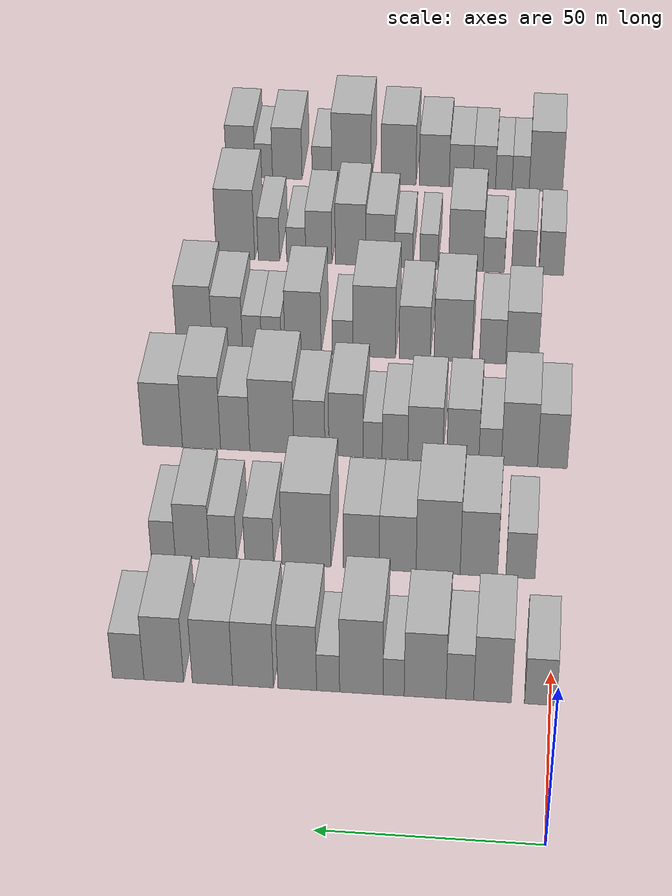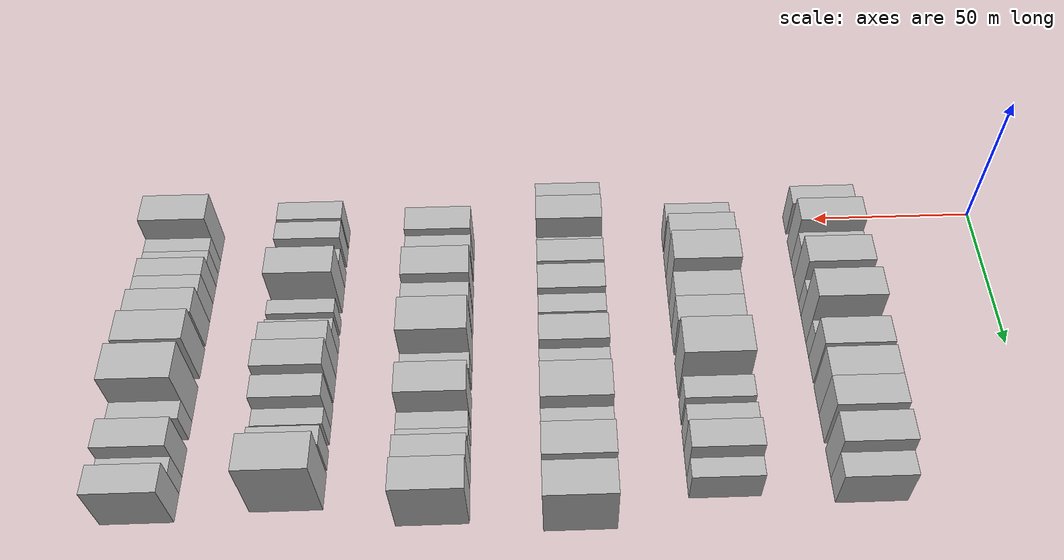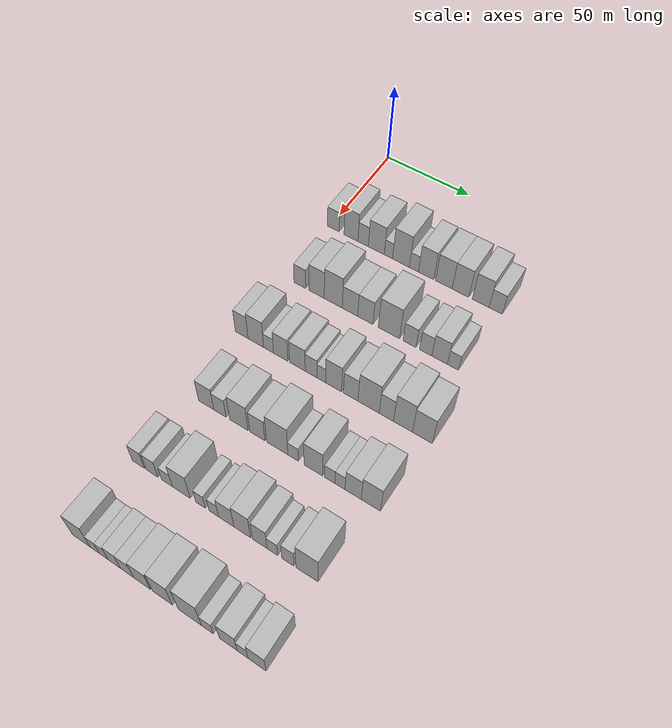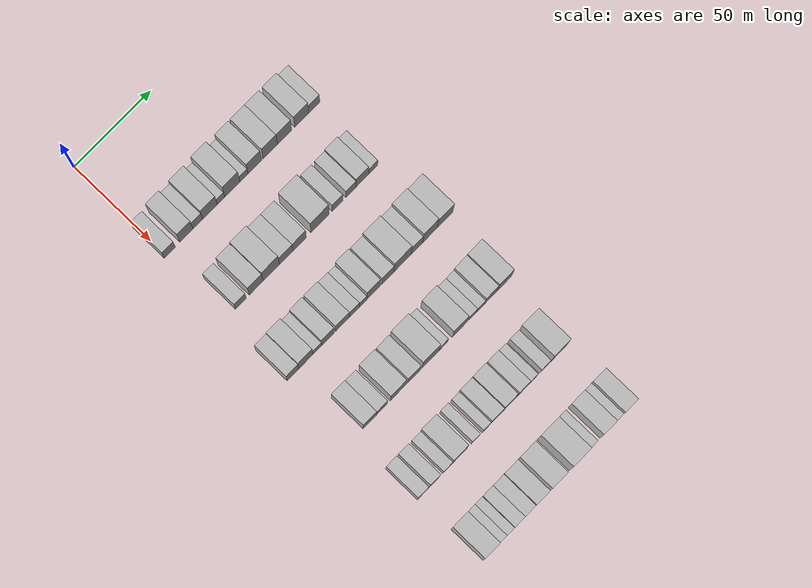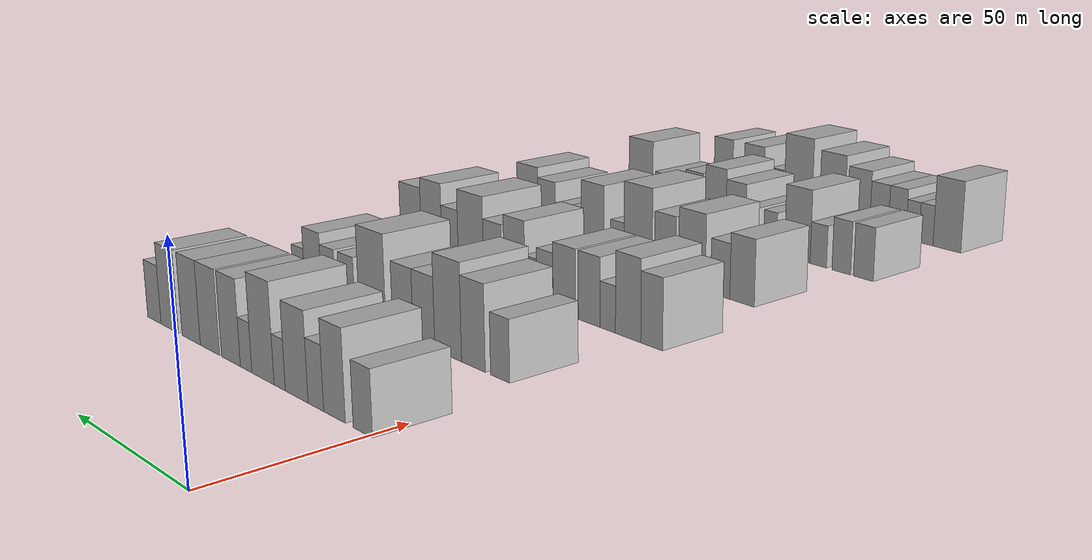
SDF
<sdf version="1.6">
 <world name="default">
  <model name="building_74">
   <static>1</static>
   <pose>50.0000 2.2648 0 0.000000 0.000000 0.000000</pose>
   <link name="link">
    <pose>0 0 7.50 0 0 0</pose>
    <collision name="collision"><geometry><box><size>20.0000 7.2375 15.0000</size></box></geometry></collision>
    <visual name="visual">
     <cast_shadows>0</cast_shadows>
     <geometry><box><size>20.0000 7.2375 15.0000</size></box></geometry>
     <material>
      <script>
       <uri>model://HANNAS_wall/materials/scripts</uri>
       <uri>model://HANNAS_wall/materials/textures</uri>
       <name>vrc/HANNAS_wall</name>
      </script>
     </material>
    </visual>
   </link>
  </model>
  <model name="building_75">
   <static>1</static>
   <pose>50.0000 13.1627 0 0.000000 0.000000 0.000000</pose>
   <link name="link">
    <pose>0 0 10.50 0 0 0</pose>
    <collision name="collision"><geometry><box><size>20.0000 8.5583 21.0000</size></box></geometry></collision>
    <visual name="visual">
     <cast_shadows>0</cast_shadows>
     <geometry><box><size>20.0000 8.5583 21.0000</size></box></geometry>
     <material>
      <script>
       <uri>model://HANNAS_wall/materials/scripts</uri>
       <uri>model://HANNAS_wall/materials/textures</uri>
       <name>vrc/HANNAS_wall</name>
      </script>
     </material>
    </visual>
   </link>
  </model>
  <model name="building_76">
   <static>1</static>
   <pose>50.0000 20.6009 0 0.000000 0.000000 0.000000</pose>
   <link name="link">
    <pose>0 0 7.50 0 0 0</pose>
    <collision name="collision"><geometry><box><size>20.0000 6.3182 15.0000</size></box></geometry></collision>
    <visual name="visual">
     <cast_shadows>0</cast_shadows>
     <geometry><box><size>20.0000 6.3182 15.0000</size></box></geometry>
     <material>
      <script>
       <uri>model://HANNAS_wall/materials/scripts</uri>
       <uri>model://HANNAS_wall/materials/textures</uri>
       <name>vrc/HANNAS_wall</name>
      </script>
     </material>
    </visual>
   </link>
  </model>
  <model name="building_77">
   <static>1</static>
   <pose>50.0000 28.5407 0 0.000000 0.000000 0.000000</pose>
   <link name="link">
    <pose>0 0 10.50 0 0 0</pose>
    <collision name="collision"><geometry><box><size>20.0000 9.5614 21.0000</size></box></geometry></collision>
    <visual name="visual">
     <cast_shadows>0</cast_shadows>
     <geometry><box><size>20.0000 9.5614 21.0000</size></box></geometry>
     <material>
      <script>
       <uri>model://HANNAS_wall/materials/scripts</uri>
       <uri>model://HANNAS_wall/materials/textures</uri>
       <name>vrc/HANNAS_wall</name>
      </script>
     </material>
    </visual>
   </link>
  </model>
  <model name="building_78">
   <static>1</static>
   <pose>50.0000 35.7611 0 0.000000 0.000000 0.000000</pose>
   <link name="link">
    <pose>0 0 6.00 0 0 0</pose>
    <collision name="collision"><geometry><box><size>20.0000 4.8795 12.0000</size></box></geometry></collision>
    <visual name="visual">
     <cast_shadows>0</cast_shadows>
     <geometry><box><size>20.0000 4.8795 12.0000</size></box></geometry>
     <material>
      <script>
       <uri>model://HANNAS_wall/materials/scripts</uri>
       <uri>model://HANNAS_wall/materials/textures</uri>
       <name>vrc/HANNAS_wall</name>
      </script>
     </material>
    </visual>
   </link>
  </model>
  <model name="building_79">
   <static>1</static>
   <pose>50.0000 43.1635 0 0.000000 0.000000 0.000000</pose>
   <link name="link">
    <pose>0 0 12.00 0 0 0</pose>
    <collision name="collision"><geometry><box><size>20.0000 9.9253 24.0000</size></box></geometry></collision>
    <visual name="visual">
     <cast_shadows>0</cast_shadows>
     <geometry><box><size>20.0000 9.9253 24.0000</size></box></geometry>
     <material>
      <script>
       <uri>model://HANNAS_wall/materials/scripts</uri>
       <uri>model://HANNAS_wall/materials/textures</uri>
       <name>vrc/HANNAS_wall</name>
      </script>
     </material>
    </visual>
   </link>
  </model>
  <model name="building_80">
   <static>1</static>
   <pose>50.0000 50.7691 0 0.000000 0.000000 0.000000</pose>
   <link name="link">
    <pose>0 0 6.00 0 0 0</pose>
    <collision name="collision"><geometry><box><size>20.0000 5.2859 12.0000</size></box></geometry></collision>
    <visual name="visual">
     <cast_shadows>0</cast_shadows>
     <geometry><box><size>20.0000 5.2859 12.0000</size></box></geometry>
     <material>
      <script>
       <uri>model://HANNAS_wall/materials/scripts</uri>
       <uri>model://HANNAS_wall/materials/textures</uri>
       <name>vrc/HANNAS_wall</name>
      </script>
     </material>
    </visual>
   </link>
  </model>
  <model name="building_81">
   <static>1</static>
   <pose>50.0000 57.8655 0 0.000000 0.000000 0.000000</pose>
   <link name="link">
    <pose>0 0 10.50 0 0 0</pose>
    <collision name="collision"><geometry><box><size>20.0000 8.9070 21.0000</size></box></geometry></collision>
    <visual name="visual">
     <cast_shadows>0</cast_shadows>
     <geometry><box><size>20.0000 8.9070 21.0000</size></box></geometry>
     <material>
      <script>
       <uri>model://HANNAS_wall/materials/scripts</uri>
       <uri>model://HANNAS_wall/materials/textures</uri>
       <name>vrc/HANNAS_wall</name>
      </script>
     </material>
    </visual>
   </link>
  </model>
  <model name="building_82">
   <static>1</static>
   <pose>50.0000 68.0477 0 0.000000 0.000000 0.000000</pose>
   <link name="link">
    <pose>0 0 10.50 0 0 0</pose>
    <collision name="collision"><geometry><box><size>20.0000 9.4573 21.0000</size></box></geometry></collision>
    <visual name="visual">
     <cast_shadows>0</cast_shadows>
     <geometry><box><size>20.0000 9.4573 21.0000</size></box></geometry>
     <material>
      <script>
       <uri>model://HANNAS_wall/materials/scripts</uri>
       <uri>model://HANNAS_wall/materials/textures</uri>
       <name>vrc/HANNAS_wall</name>
      </script>
     </material>
    </visual>
   </link>
  </model>
  <model name="building_83">
   <static>1</static>
   <pose>50.0000 77.4433 0 0.000000 0.000000 0.000000</pose>
   <link name="link">
    <pose>0 0 10.50 0 0 0</pose>
    <collision name="collision"><geometry><box><size>20.0000 9.3339 21.0000</size></box></geometry></collision>
    <visual name="visual">
     <cast_shadows>0</cast_shadows>
     <geometry><box><size>20.0000 9.3339 21.0000</size></box></geometry>
     <material>
      <script>
       <uri>model://HANNAS_wall/materials/scripts</uri>
       <uri>model://HANNAS_wall/materials/textures</uri>
       <name>vrc/HANNAS_wall</name>
      </script>
     </material>
    </visual>
   </link>
  </model>
  <model name="building_84">
   <static>1</static>
   <pose>50.0000 88.7173 0 0.000000 0.000000 0.000000</pose>
   <link name="link">
    <pose>0 0 10.50 0 0 0</pose>
    <collision name="collision"><geometry><box><size>20.0000 9.2142 21.0000</size></box></geometry></collision>
    <visual name="visual">
     <cast_shadows>0</cast_shadows>
     <geometry><box><size>20.0000 9.2142 21.0000</size></box></geometry>
     <material>
      <script>
       <uri>model://HANNAS_wall/materials/scripts</uri>
       <uri>model://HANNAS_wall/materials/textures</uri>
       <name>vrc/HANNAS_wall</name>
      </script>
     </material>
    </visual>
   </link>
  </model>
  <model name="building_85">
   <static>1</static>
   <pose>50.0000 96.9901 0 0.000000 0.000000 0.000000</pose>
   <link name="link">
    <pose>0 0 7.50 0 0 0</pose>
    <collision name="collision"><geometry><box><size>20.0000 7.3313 15.0000</size></box></geometry></collision>
    <visual name="visual">
     <cast_shadows>0</cast_shadows>
     <geometry><box><size>20.0000 7.3313 15.0000</size></box></geometry>
     <material>
      <script>
       <uri>model://HANNAS_wall/materials/scripts</uri>
       <uri>model://HANNAS_wall/materials/textures</uri>
       <name>vrc/HANNAS_wall</name>
      </script>
     </material>
    </visual>
   </link>
  </model>
  <model name="building_195">
   <static>1</static>
   <pose>90.0000 8.1143 0 0.000000 0.000000 0.000000</pose>
   <link name="link">
    <pose>0 0 7.50 0 0 0</pose>
    <collision name="collision"><geometry><box><size>20.0000 7.0171 15.0000</size></box></geometry></collision>
    <visual name="visual">
     <cast_shadows>0</cast_shadows>
     <geometry><box><size>20.0000 7.0171 15.0000</size></box></geometry>
     <material>
      <script>
       <uri>model://HANNAS_wall/materials/scripts</uri>
       <uri>model://HANNAS_wall/materials/textures</uri>
       <name>vrc/HANNAS_wall</name>
      </script>
     </material>
    </visual>
   </link>
  </model>
  <model name="building_196">
   <static>1</static>
   <pose>90.0000 18.1318 0 0.000000 0.000000 0.000000</pose>
   <link name="link">
    <pose>0 0 10.50 0 0 0</pose>
    <collision name="collision"><geometry><box><size>20.0000 9.0178 21.0000</size></box></geometry></collision>
    <visual name="visual">
     <cast_shadows>0</cast_shadows>
     <geometry><box><size>20.0000 9.0178 21.0000</size></box></geometry>
     <material>
      <script>
       <uri>model://HANNAS_wall/materials/scripts</uri>
       <uri>model://HANNAS_wall/materials/textures</uri>
       <name>vrc/HANNAS_wall</name>
      </script>
     </material>
    </visual>
   </link>
  </model>
  <model name="building_197">
   <static>1</static>
   <pose>90.0000 27.9597 0 0.000000 0.000000 0.000000</pose>
   <link name="link">
    <pose>0 0 12.00 0 0 0</pose>
    <collision name="collision"><geometry><box><size>20.0000 10.6381 24.0000</size></box></geometry></collision>
    <visual name="visual">
     <cast_shadows>0</cast_shadows>
     <geometry><box><size>20.0000 10.6381 24.0000</size></box></geometry>
     <material>
      <script>
       <uri>model://HANNAS_wall/materials/scripts</uri>
       <uri>model://HANNAS_wall/materials/textures</uri>
       <name>vrc/HANNAS_wall</name>
      </script>
     </material>
    </visual>
   </link>
  </model>
  <model name="building_198">
   <static>1</static>
   <pose>90.0000 37.7252 0 0.000000 0.000000 0.000000</pose>
   <link name="link">
    <pose>0 0 9.00 0 0 0</pose>
    <collision name="collision"><geometry><box><size>20.0000 8.8930 18.0000</size></box></geometry></collision>
    <visual name="visual">
     <cast_shadows>0</cast_shadows>
     <geometry><box><size>20.0000 8.8930 18.0000</size></box></geometry>
     <material>
      <script>
       <uri>model://HANNAS_wall/materials/scripts</uri>
       <uri>model://HANNAS_wall/materials/textures</uri>
       <name>vrc/HANNAS_wall</name>
      </script>
     </material>
    </visual>
   </link>
  </model>
  <model name="building_199">
   <static>1</static>
   <pose>90.0000 46.5488 0 0.000000 0.000000 0.000000</pose>
   <link name="link">
    <pose>0 0 9.00 0 0 0</pose>
    <collision name="collision"><geometry><box><size>20.0000 8.7542 18.0000</size></box></geometry></collision>
    <visual name="visual">
     <cast_shadows>0</cast_shadows>
     <geometry><box><size>20.0000 8.7542 18.0000</size></box></geometry>
     <material>
      <script>
       <uri>model://HANNAS_wall/materials/scripts</uri>
       <uri>model://HANNAS_wall/materials/textures</uri>
       <name>vrc/HANNAS_wall</name>
      </script>
     </material>
    </visual>
   </link>
  </model>
  <model name="building_200">
   <static>1</static>
   <pose>90.0000 59.8973 0 0.000000 0.000000 0.000000</pose>
   <link name="link">
    <pose>0 0 12.00 0 0 0</pose>
    <collision name="collision"><geometry><box><size>20.0000 11.9426 24.0000</size></box></geometry></collision>
    <visual name="visual">
     <cast_shadows>0</cast_shadows>
     <geometry><box><size>20.0000 11.9426 24.0000</size></box></geometry>
     <material>
      <script>
       <uri>model://HANNAS_wall/materials/scripts</uri>
       <uri>model://HANNAS_wall/materials/textures</uri>
       <name>vrc/HANNAS_wall</name>
      </script>
     </material>
    </visual>
   </link>
  </model>
  <model name="building_201">
   <static>1</static>
   <pose>90.0000 71.3973 0 0.000000 0.000000 0.000000</pose>
   <link name="link">
    <pose>0 0 7.50 0 0 0</pose>
    <collision name="collision"><geometry><box><size>20.0000 7.0575 15.0000</size></box></geometry></collision>
    <visual name="visual">
     <cast_shadows>0</cast_shadows>
     <geometry><box><size>20.0000 7.0575 15.0000</size></box></geometry>
     <material>
      <script>
       <uri>model://HANNAS_wall/materials/scripts</uri>
       <uri>model://HANNAS_wall/materials/textures</uri>
       <name>vrc/HANNAS_wall</name>
      </script>
     </material>
    </visual>
   </link>
  </model>
  <model name="building_202">
   <static>1</static>
   <pose>90.0000 80.2539 0 0.000000 0.000000 0.000000</pose>
   <link name="link">
    <pose>0 0 7.50 0 0 0</pose>
    <collision name="collision"><geometry><box><size>20.0000 6.6558 15.0000</size></box></geometry></collision>
    <visual name="visual">
     <cast_shadows>0</cast_shadows>
     <geometry><box><size>20.0000 6.6558 15.0000</size></box></geometry>
     <material>
      <script>
       <uri>model://HANNAS_wall/materials/scripts</uri>
       <uri>model://HANNAS_wall/materials/textures</uri>
       <name>vrc/HANNAS_wall</name>
      </script>
     </material>
    </visual>
   </link>
  </model>
  <model name="building_203">
   <static>1</static>
   <pose>90.0000 87.7767 0 0.000000 0.000000 0.000000</pose>
   <link name="link">
    <pose>0 0 9.00 0 0 0</pose>
    <collision name="collision"><geometry><box><size>20.0000 8.3898 18.0000</size></box></geometry></collision>
    <visual name="visual">
     <cast_shadows>0</cast_shadows>
     <geometry><box><size>20.0000 8.3898 18.0000</size></box></geometry>
     <material>
      <script>
       <uri>model://HANNAS_wall/materials/scripts</uri>
       <uri>model://HANNAS_wall/materials/textures</uri>
       <name>vrc/HANNAS_wall</name>
      </script>
     </material>
    </visual>
   </link>
  </model>
  <model name="building_204">
   <static>1</static>
   <pose>90.0000 94.9341 0 0.000000 0.000000 0.000000</pose>
   <link name="link">
    <pose>0 0 6.00 0 0 0</pose>
    <collision name="collision"><geometry><box><size>20.0000 5.9249 12.0000</size></box></geometry></collision>
    <visual name="visual">
     <cast_shadows>0</cast_shadows>
     <geometry><box><size>20.0000 5.9249 12.0000</size></box></geometry>
     <material>
      <script>
       <uri>model://HANNAS_wall/materials/scripts</uri>
       <uri>model://HANNAS_wall/materials/textures</uri>
       <name>vrc/HANNAS_wall</name>
      </script>
     </material>
    </visual>
   </link>
  </model>
  <model name="building_332">
   <static>1</static>
   <pose>130.0000 1.3070 0 0.000000 0.000000 0.000000</pose>
   <link name="link">
    <pose>0 0 9.00 0 0 0</pose>
    <collision name="collision"><geometry><box><size>20.0000 7.5720 18.0000</size></box></geometry></collision>
    <visual name="visual">
     <cast_shadows>0</cast_shadows>
     <geometry><box><size>20.0000 7.5720 18.0000</size></box></geometry>
     <material>
      <script>
       <uri>model://HANNAS_wall/materials/scripts</uri>
       <uri>model://HANNAS_wall/materials/textures</uri>
       <name>vrc/HANNAS_wall</name>
      </script>
     </material>
    </visual>
   </link>
  </model>
  <model name="building_333">
   <static>1</static>
   <pose>130.0000 9.6694 0 0.000000 0.000000 0.000000</pose>
   <link name="link">
    <pose>0 0 10.50 0 0 0</pose>
    <collision name="collision"><geometry><box><size>20.0000 9.1527 21.0000</size></box></geometry></collision>
    <visual name="visual">
     <cast_shadows>0</cast_shadows>
     <geometry><box><size>20.0000 9.1527 21.0000</size></box></geometry>
     <material>
      <script>
       <uri>model://HANNAS_wall/materials/scripts</uri>
       <uri>model://HANNAS_wall/materials/textures</uri>
       <name>vrc/HANNAS_wall</name>
      </script>
     </material>
    </visual>
   </link>
  </model>
  <model name="building_334">
   <static>1</static>
   <pose>130.0000 17.1137 0 0.000000 0.000000 0.000000</pose>
   <link name="link">
    <pose>0 0 6.00 0 0 0</pose>
    <collision name="collision"><geometry><box><size>20.0000 5.7358 12.0000</size></box></geometry></collision>
    <visual name="visual">
     <cast_shadows>0</cast_shadows>
     <geometry><box><size>20.0000 5.7358 12.0000</size></box></geometry>
     <material>
      <script>
       <uri>model://HANNAS_wall/materials/scripts</uri>
       <uri>model://HANNAS_wall/materials/textures</uri>
       <name>vrc/HANNAS_wall</name>
      </script>
     </material>
    </visual>
   </link>
  </model>
  <model name="building_335">
   <static>1</static>
   <pose>130.0000 24.0768 0 0.000000 0.000000 0.000000</pose>
   <link name="link">
    <pose>0 0 9.00 0 0 0</pose>
    <collision name="collision"><geometry><box><size>20.0000 8.1905 18.0000</size></box></geometry></collision>
    <visual name="visual">
     <cast_shadows>0</cast_shadows>
     <geometry><box><size>20.0000 8.1905 18.0000</size></box></geometry>
     <material>
      <script>
       <uri>model://HANNAS_wall/materials/scripts</uri>
       <uri>model://HANNAS_wall/materials/textures</uri>
       <name>vrc/HANNAS_wall</name>
      </script>
     </material>
    </visual>
   </link>
  </model>
  <model name="building_336">
   <static>1</static>
   <pose>130.0000 33.6179 0 0.000000 0.000000 0.000000</pose>
   <link name="link">
    <pose>0 0 9.00 0 0 0</pose>
    <collision name="collision"><geometry><box><size>20.0000 8.8916 18.0000</size></box></geometry></collision>
    <visual name="visual">
     <cast_shadows>0</cast_shadows>
     <geometry><box><size>20.0000 8.8916 18.0000</size></box></geometry>
     <material>
      <script>
       <uri>model://HANNAS_wall/materials/scripts</uri>
       <uri>model://HANNAS_wall/materials/textures</uri>
       <name>vrc/HANNAS_wall</name>
      </script>
     </material>
    </visual>
   </link>
  </model>
  <model name="building_337">
   <static>1</static>
   <pose>130.0000 41.3486 0 0.000000 0.000000 0.000000</pose>
   <link name="link">
    <pose>0 0 7.50 0 0 0</pose>
    <collision name="collision"><geometry><box><size>20.0000 6.5700 15.0000</size></box></geometry></collision>
    <visual name="visual">
     <cast_shadows>0</cast_shadows>
     <geometry><box><size>20.0000 6.5700 15.0000</size></box></geometry>
     <material>
      <script>
       <uri>model://HANNAS_wall/materials/scripts</uri>
       <uri>model://HANNAS_wall/materials/textures</uri>
       <name>vrc/HANNAS_wall</name>
      </script>
     </material>
    </visual>
   </link>
  </model>
  <model name="building_338">
   <static>1</static>
   <pose>130.0000 47.0727 0 0.000000 0.000000 0.000000</pose>
   <link name="link">
    <pose>0 0 6.00 0 0 0</pose>
    <collision name="collision"><geometry><box><size>20.0000 4.8782 12.0000</size></box></geometry></collision>
    <visual name="visual">
     <cast_shadows>0</cast_shadows>
     <geometry><box><size>20.0000 4.8782 12.0000</size></box></geometry>
     <material>
      <script>
       <uri>model://HANNAS_wall/materials/scripts</uri>
       <uri>model://HANNAS_wall/materials/textures</uri>
       <name>vrc/HANNAS_wall</name>
      </script>
     </material>
    </visual>
   </link>
  </model>
  <model name="building_339">
   <static>1</static>
   <pose>130.0000 53.8909 0 0.000000 0.000000 0.000000</pose>
   <link name="link">
    <pose>0 0 10.50 0 0 0</pose>
    <collision name="collision"><geometry><box><size>20.0000 8.7584 21.0000</size></box></geometry></collision>
    <visual name="visual">
     <cast_shadows>0</cast_shadows>
     <geometry><box><size>20.0000 8.7584 21.0000</size></box></geometry>
     <material>
      <script>
       <uri>model://HANNAS_wall/materials/scripts</uri>
       <uri>model://HANNAS_wall/materials/textures</uri>
       <name>vrc/HANNAS_wall</name>
      </script>
     </material>
    </visual>
   </link>
  </model>
  <model name="building_340">
   <static>1</static>
   <pose>130.0000 63.2449 0 0.000000 0.000000 0.000000</pose>
   <link name="link">
    <pose>0 0 9.00 0 0 0</pose>
    <collision name="collision"><geometry><box><size>20.0000 7.9496 18.0000</size></box></geometry></collision>
    <visual name="visual">
     <cast_shadows>0</cast_shadows>
     <geometry><box><size>20.0000 7.9496 18.0000</size></box></geometry>
     <material>
      <script>
       <uri>model://HANNAS_wall/materials/scripts</uri>
       <uri>model://HANNAS_wall/materials/textures</uri>
       <name>vrc/HANNAS_wall</name>
      </script>
     </material>
    </visual>
   </link>
  </model>
  <model name="building_341">
   <static>1</static>
   <pose>130.0000 72.9099 0 0.000000 0.000000 0.000000</pose>
   <link name="link">
    <pose>0 0 12.00 0 0 0</pose>
    <collision name="collision"><geometry><box><size>20.0000 11.3805 24.0000</size></box></geometry></collision>
    <visual name="visual">
     <cast_shadows>0</cast_shadows>
     <geometry><box><size>20.0000 11.3805 24.0000</size></box></geometry>
     <material>
      <script>
       <uri>model://HANNAS_wall/materials/scripts</uri>
       <uri>model://HANNAS_wall/materials/textures</uri>
       <name>vrc/HANNAS_wall</name>
      </script>
     </material>
    </visual>
   </link>
  </model>
  <model name="building_342">
   <static>1</static>
   <pose>130.0000 82.3784 0 0.000000 0.000000 0.000000</pose>
   <link name="link">
    <pose>0 0 9.00 0 0 0</pose>
    <collision name="collision"><geometry><box><size>20.0000 7.5563 18.0000</size></box></geometry></collision>
    <visual name="visual">
     <cast_shadows>0</cast_shadows>
     <geometry><box><size>20.0000 7.5563 18.0000</size></box></geometry>
     <material>
      <script>
       <uri>model://HANNAS_wall/materials/scripts</uri>
       <uri>model://HANNAS_wall/materials/textures</uri>
       <name>vrc/HANNAS_wall</name>
      </script>
     </material>
    </visual>
   </link>
  </model>
  <model name="building_343">
   <static>1</static>
   <pose>130.0000 91.0772 0 0.000000 0.000000 0.000000</pose>
   <link name="link">
    <pose>0 0 12.00 0 0 0</pose>
    <collision name="collision"><geometry><box><size>20.0000 9.8415 24.0000</size></box></geometry></collision>
    <visual name="visual">
     <cast_shadows>0</cast_shadows>
     <geometry><box><size>20.0000 9.8415 24.0000</size></box></geometry>
     <material>
      <script>
       <uri>model://HANNAS_wall/materials/scripts</uri>
       <uri>model://HANNAS_wall/materials/textures</uri>
       <name>vrc/HANNAS_wall</name>
      </script>
     </material>
    </visual>
   </link>
  </model>
  <model name="building_344">
   <static>1</static>
   <pose>130.0000 101.1284 0 0.000000 0.000000 0.000000</pose>
   <link name="link">
    <pose>0 0 10.50 0 0 0</pose>
    <collision name="collision"><geometry><box><size>20.0000 10.2608 21.0000</size></box></geometry></collision>
    <visual name="visual">
     <cast_shadows>0</cast_shadows>
     <geometry><box><size>20.0000 10.2608 21.0000</size></box></geometry>
     <material>
      <script>
       <uri>model://HANNAS_wall/materials/scripts</uri>
       <uri>model://HANNAS_wall/materials/textures</uri>
       <name>vrc/HANNAS_wall</name>
      </script>
     </material>
    </visual>
   </link>
  </model>
  <model name="building_474">
   <static>1</static>
   <pose>170.0000 10.2628 0 0.000000 0.000000 0.000000</pose>
   <link name="link">
    <pose>0 0 9.00 0 0 0</pose>
    <collision name="collision"><geometry><box><size>20.0000 8.7100 18.0000</size></box></geometry></collision>
    <visual name="visual">
     <cast_shadows>0</cast_shadows>
     <geometry><box><size>20.0000 8.7100 18.0000</size></box></geometry>
     <material>
      <script>
       <uri>model://HANNAS_wall/materials/scripts</uri>
       <uri>model://HANNAS_wall/materials/textures</uri>
       <name>vrc/HANNAS_wall</name>
      </script>
     </material>
    </visual>
   </link>
  </model>
  <model name="building_475">
   <static>1</static>
   <pose>170.0000 18.1421 0 0.000000 0.000000 0.000000</pose>
   <link name="link">
    <pose>0 0 7.50 0 0 0</pose>
    <collision name="collision"><geometry><box><size>20.0000 7.0486 15.0000</size></box></geometry></collision>
    <visual name="visual">
     <cast_shadows>0</cast_shadows>
     <geometry><box><size>20.0000 7.0486 15.0000</size></box></geometry>
     <material>
      <script>
       <uri>model://HANNAS_wall/materials/scripts</uri>
       <uri>model://HANNAS_wall/materials/textures</uri>
       <name>vrc/HANNAS_wall</name>
      </script>
     </material>
    </visual>
   </link>
  </model>
  <model name="building_476">
   <static>1</static>
   <pose>170.0000 28.7541 0 0.000000 0.000000 0.000000</pose>
   <link name="link">
    <pose>0 0 10.50 0 0 0</pose>
    <collision name="collision"><geometry><box><size>20.0000 10.1754 21.0000</size></box></geometry></collision>
    <visual name="visual">
     <cast_shadows>0</cast_shadows>
     <geometry><box><size>20.0000 10.1754 21.0000</size></box></geometry>
     <material>
      <script>
       <uri>model://HANNAS_wall/materials/scripts</uri>
       <uri>model://HANNAS_wall/materials/textures</uri>
       <name>vrc/HANNAS_wall</name>
      </script>
     </material>
    </visual>
   </link>
  </model>
  <model name="building_477">
   <static>1</static>
   <pose>170.0000 39.0204 0 0.000000 0.000000 0.000000</pose>
   <link name="link">
    <pose>0 0 9.00 0 0 0</pose>
    <collision name="collision"><geometry><box><size>20.0000 8.3572 18.0000</size></box></geometry></collision>
    <visual name="visual">
     <cast_shadows>0</cast_shadows>
     <geometry><box><size>20.0000 8.3572 18.0000</size></box></geometry>
     <material>
      <script>
       <uri>model://HANNAS_wall/materials/scripts</uri>
       <uri>model://HANNAS_wall/materials/textures</uri>
       <name>vrc/HANNAS_wall</name>
      </script>
     </material>
    </visual>
   </link>
  </model>
  <model name="building_478">
   <static>1</static>
   <pose>170.0000 49.9130 0 0.000000 0.000000 0.000000</pose>
   <link name="link">
    <pose>0 0 12.00 0 0 0</pose>
    <collision name="collision"><geometry><box><size>20.0000 11.4280 24.0000</size></box></geometry></collision>
    <visual name="visual">
     <cast_shadows>0</cast_shadows>
     <geometry><box><size>20.0000 11.4280 24.0000</size></box></geometry>
     <material>
      <script>
       <uri>model://HANNAS_wall/materials/scripts</uri>
       <uri>model://HANNAS_wall/materials/textures</uri>
       <name>vrc/HANNAS_wall</name>
      </script>
     </material>
    </visual>
   </link>
  </model>
  <model name="building_479">
   <static>1</static>
   <pose>170.0000 58.4281 0 0.000000 0.000000 0.000000</pose>
   <link name="link">
    <pose>0 0 6.00 0 0 0</pose>
    <collision name="collision"><geometry><box><size>20.0000 5.6022 12.0000</size></box></geometry></collision>
    <visual name="visual">
     <cast_shadows>0</cast_shadows>
     <geometry><box><size>20.0000 5.6022 12.0000</size></box></geometry>
     <material>
      <script>
       <uri>model://HANNAS_wall/materials/scripts</uri>
       <uri>model://HANNAS_wall/materials/textures</uri>
       <name>vrc/HANNAS_wall</name>
      </script>
     </material>
    </visual>
   </link>
  </model>
  <model name="building_480">
   <static>1</static>
   <pose>170.0000 69.0988 0 0.000000 0.000000 0.000000</pose>
   <link name="link">
    <pose>0 0 10.50 0 0 0</pose>
    <collision name="collision"><geometry><box><size>20.0000 9.7392 21.0000</size></box></geometry></collision>
    <visual name="visual">
     <cast_shadows>0</cast_shadows>
     <geometry><box><size>20.0000 9.7392 21.0000</size></box></geometry>
     <material>
      <script>
       <uri>model://HANNAS_wall/materials/scripts</uri>
       <uri>model://HANNAS_wall/materials/textures</uri>
       <name>vrc/HANNAS_wall</name>
      </script>
     </material>
    </visual>
   </link>
  </model>
  <model name="building_481">
   <static>1</static>
   <pose>170.0000 77.6541 0 0.000000 0.000000 0.000000</pose>
   <link name="link">
    <pose>0 0 6.00 0 0 0</pose>
    <collision name="collision"><geometry><box><size>20.0000 5.3714 12.0000</size></box></geometry></collision>
    <visual name="visual">
     <cast_shadows>0</cast_shadows>
     <geometry><box><size>20.0000 5.3714 12.0000</size></box></geometry>
     <material>
      <script>
       <uri>model://HANNAS_wall/materials/scripts</uri>
       <uri>model://HANNAS_wall/materials/textures</uri>
       <name>vrc/HANNAS_wall</name>
      </script>
     </material>
    </visual>
   </link>
  </model>
  <model name="building_482">
   <static>1</static>
   <pose>170.0000 82.9139 0 0.000000 0.000000 0.000000</pose>
   <link name="link">
    <pose>0 0 6.00 0 0 0</pose>
    <collision name="collision"><geometry><box><size>20.0000 5.1480 12.0000</size></box></geometry></collision>
    <visual name="visual">
     <cast_shadows>0</cast_shadows>
     <geometry><box><size>20.0000 5.1480 12.0000</size></box></geometry>
     <material>
      <script>
       <uri>model://HANNAS_wall/materials/scripts</uri>
       <uri>model://HANNAS_wall/materials/textures</uri>
       <name>vrc/HANNAS_wall</name>
      </script>
     </material>
    </visual>
   </link>
  </model>
  <model name="building_483">
   <static>1</static>
   <pose>170.0000 89.6095 0 0.000000 0.000000 0.000000</pose>
   <link name="link">
    <pose>0 0 9.00 0 0 0</pose>
    <collision name="collision"><geometry><box><size>20.0000 8.2433 18.0000</size></box></geometry></collision>
    <visual name="visual">
     <cast_shadows>0</cast_shadows>
     <geometry><box><size>20.0000 8.2433 18.0000</size></box></geometry>
     <material>
      <script>
       <uri>model://HANNAS_wall/materials/scripts</uri>
       <uri>model://HANNAS_wall/materials/textures</uri>
       <name>vrc/HANNAS_wall</name>
      </script>
     </material>
    </visual>
   </link>
  </model>
  <model name="building_484">
   <static>1</static>
   <pose>170.0000 98.5637 0 0.000000 0.000000 0.000000</pose>
   <link name="link">
    <pose>0 0 10.50 0 0 0</pose>
    <collision name="collision"><geometry><box><size>20.0000 9.6650 21.0000</size></box></geometry></collision>
    <visual name="visual">
     <cast_shadows>0</cast_shadows>
     <geometry><box><size>20.0000 9.6650 21.0000</size></box></geometry>
     <material>
      <script>
       <uri>model://HANNAS_wall/materials/scripts</uri>
       <uri>model://HANNAS_wall/materials/textures</uri>
       <name>vrc/HANNAS_wall</name>
      </script>
     </material>
    </visual>
   </link>
  </model>
  <model name="building_617">
   <static>1</static>
   <pose>210.0000 3.3937 0 0.000000 0.000000 0.000000</pose>
   <link name="link">
    <pose>0 0 7.50 0 0 0</pose>
    <collision name="collision"><geometry><box><size>20.0000 6.8870 15.0000</size></box></geometry></collision>
    <visual name="visual">
     <cast_shadows>0</cast_shadows>
     <geometry><box><size>20.0000 6.8870 15.0000</size></box></geometry>
     <material>
      <script>
       <uri>model://HANNAS_wall/materials/scripts</uri>
       <uri>model://HANNAS_wall/materials/textures</uri>
       <name>vrc/HANNAS_wall</name>
      </script>
     </material>
    </visual>
   </link>
  </model>
  <model name="building_618">
   <static>1</static>
   <pose>210.0000 11.1658 0 0.000000 0.000000 0.000000</pose>
   <link name="link">
    <pose>0 0 7.50 0 0 0</pose>
    <collision name="collision"><geometry><box><size>20.0000 6.6573 15.0000</size></box></geometry></collision>
    <visual name="visual">
     <cast_shadows>0</cast_shadows>
     <geometry><box><size>20.0000 6.6573 15.0000</size></box></geometry>
     <material>
      <script>
       <uri>model://HANNAS_wall/materials/scripts</uri>
       <uri>model://HANNAS_wall/materials/textures</uri>
       <name>vrc/HANNAS_wall</name>
      </script>
     </material>
    </visual>
   </link>
  </model>
  <model name="building_619">
   <static>1</static>
   <pose>210.0000 19.4872 0 0.000000 0.000000 0.000000</pose>
   <link name="link">
    <pose>0 0 6.00 0 0 0</pose>
    <collision name="collision"><geometry><box><size>20.0000 5.9856 12.0000</size></box></geometry></collision>
    <visual name="visual">
     <cast_shadows>0</cast_shadows>
     <geometry><box><size>20.0000 5.9856 12.0000</size></box></geometry>
     <material>
      <script>
       <uri>model://HANNAS_wall/materials/scripts</uri>
       <uri>model://HANNAS_wall/materials/textures</uri>
       <name>vrc/HANNAS_wall</name>
      </script>
     </material>
    </visual>
   </link>
  </model>
  <model name="building_620">
   <static>1</static>
   <pose>210.0000 27.3227 0 0.000000 0.000000 0.000000</pose>
   <link name="link">
    <pose>0 0 10.50 0 0 0</pose>
    <collision name="collision"><geometry><box><size>20.0000 9.6852 21.0000</size></box></geometry></collision>
    <visual name="visual">
     <cast_shadows>0</cast_shadows>
     <geometry><box><size>20.0000 9.6852 21.0000</size></box></geometry>
     <material>
      <script>
       <uri>model://HANNAS_wall/materials/scripts</uri>
       <uri>model://HANNAS_wall/materials/textures</uri>
       <name>vrc/HANNAS_wall</name>
      </script>
     </material>
    </visual>
   </link>
  </model>
  <model name="building_621">
   <static>1</static>
   <pose>210.0000 37.7411 0 0.000000 0.000000 0.000000</pose>
   <link name="link">
    <pose>0 0 6.00 0 0 0</pose>
    <collision name="collision"><geometry><box><size>20.0000 5.1517 12.0000</size></box></geometry></collision>
    <visual name="visual">
     <cast_shadows>0</cast_shadows>
     <geometry><box><size>20.0000 5.1517 12.0000</size></box></geometry>
     <material>
      <script>
       <uri>model://HANNAS_wall/materials/scripts</uri>
       <uri>model://HANNAS_wall/materials/textures</uri>
       <name>vrc/HANNAS_wall</name>
      </script>
     </material>
    </visual>
   </link>
  </model>
  <model name="building_622">
   <static>1</static>
   <pose>210.0000 44.8460 0 0.000000 0.000000 0.000000</pose>
   <link name="link">
    <pose>0 0 6.00 0 0 0</pose>
    <collision name="collision"><geometry><box><size>20.0000 5.0579 12.0000</size></box></geometry></collision>
    <visual name="visual">
     <cast_shadows>0</cast_shadows>
     <geometry><box><size>20.0000 5.0579 12.0000</size></box></geometry>
     <material>
      <script>
       <uri>model://HANNAS_wall/materials/scripts</uri>
       <uri>model://HANNAS_wall/materials/textures</uri>
       <name>vrc/HANNAS_wall</name>
      </script>
     </material>
    </visual>
   </link>
  </model>
  <model name="building_623">
   <static>1</static>
   <pose>210.0000 51.4165 0 0.000000 0.000000 0.000000</pose>
   <link name="link">
    <pose>0 0 9.00 0 0 0</pose>
    <collision name="collision"><geometry><box><size>20.0000 8.0832 18.0000</size></box></geometry></collision>
    <visual name="visual">
     <cast_shadows>0</cast_shadows>
     <geometry><box><size>20.0000 8.0832 18.0000</size></box></geometry>
     <material>
      <script>
       <uri>model://HANNAS_wall/materials/scripts</uri>
       <uri>model://HANNAS_wall/materials/textures</uri>
       <name>vrc/HANNAS_wall</name>
      </script>
     </material>
    </visual>
   </link>
  </model>
  <model name="building_624">
   <static>1</static>
   <pose>210.0000 59.7907 0 0.000000 0.000000 0.000000</pose>
   <link name="link">
    <pose>0 0 10.50 0 0 0</pose>
    <collision name="collision"><geometry><box><size>20.0000 8.6652 21.0000</size></box></geometry></collision>
    <visual name="visual">
     <cast_shadows>0</cast_shadows>
     <geometry><box><size>20.0000 8.6652 21.0000</size></box></geometry>
     <material>
      <script>
       <uri>model://HANNAS_wall/materials/scripts</uri>
       <uri>model://HANNAS_wall/materials/textures</uri>
       <name>vrc/HANNAS_wall</name>
      </script>
     </material>
    </visual>
   </link>
  </model>
  <model name="building_625">
   <static>1</static>
   <pose>210.0000 68.8157 0 0.000000 0.000000 0.000000</pose>
   <link name="link">
    <pose>0 0 9.00 0 0 0</pose>
    <collision name="collision"><geometry><box><size>20.0000 7.3848 18.0000</size></box></geometry></collision>
    <visual name="visual">
     <cast_shadows>0</cast_shadows>
     <geometry><box><size>20.0000 7.3848 18.0000</size></box></geometry>
     <material>
      <script>
       <uri>model://HANNAS_wall/materials/scripts</uri>
       <uri>model://HANNAS_wall/materials/textures</uri>
       <name>vrc/HANNAS_wall</name>
      </script>
     </material>
    </visual>
   </link>
  </model>
  <model name="building_626">
   <static>1</static>
   <pose>210.0000 75.2285 0 0.000000 0.000000 0.000000</pose>
   <link name="link">
    <pose>0 0 6.00 0 0 0</pose>
    <collision name="collision"><geometry><box><size>20.0000 5.4409 12.0000</size></box></geometry></collision>
    <visual name="visual">
     <cast_shadows>0</cast_shadows>
     <geometry><box><size>20.0000 5.4409 12.0000</size></box></geometry>
     <material>
      <script>
       <uri>model://HANNAS_wall/materials/scripts</uri>
       <uri>model://HANNAS_wall/materials/textures</uri>
       <name>vrc/HANNAS_wall</name>
      </script>
     </material>
    </visual>
   </link>
  </model>
  <model name="building_627">
   <static>1</static>
   <pose>210.0000 82.9810 0 0.000000 0.000000 0.000000</pose>
   <link name="link">
    <pose>0 0 7.50 0 0 0</pose>
    <collision name="collision"><geometry><box><size>20.0000 6.0640 15.0000</size></box></geometry></collision>
    <visual name="visual">
     <cast_shadows>0</cast_shadows>
     <geometry><box><size>20.0000 6.0640 15.0000</size></box></geometry>
     <material>
      <script>
       <uri>model://HANNAS_wall/materials/scripts</uri>
       <uri>model://HANNAS_wall/materials/textures</uri>
       <name>vrc/HANNAS_wall</name>
      </script>
     </material>
    </visual>
   </link>
  </model>
  <model name="building_628">
   <static>1</static>
   <pose>210.0000 92.4740 0 0.000000 0.000000 0.000000</pose>
   <link name="link">
    <pose>0 0 12.00 0 0 0</pose>
    <collision name="collision"><geometry><box><size>20.0000 10.9220 24.0000</size></box></geometry></collision>
    <visual name="visual">
     <cast_shadows>0</cast_shadows>
     <geometry><box><size>20.0000 10.9220 24.0000</size></box></geometry>
     <material>
      <script>
       <uri>model://HANNAS_wall/materials/scripts</uri>
       <uri>model://HANNAS_wall/materials/textures</uri>
       <name>vrc/HANNAS_wall</name>
      </script>
     </material>
    </visual>
   </link>
  </model>
  <model name="building_759">
   <static>1</static>
   <pose>250.0000 5.8374 0 0.000000 0.000000 0.000000</pose>
   <link name="link">
    <pose>0 0 10.50 0 0 0</pose>
    <collision name="collision"><geometry><box><size>20.0000 9.7814 21.0000</size></box></geometry></collision>
    <visual name="visual">
     <cast_shadows>0</cast_shadows>
     <geometry><box><size>20.0000 9.7814 21.0000</size></box></geometry>
     <material>
      <script>
       <uri>model://HANNAS_wall/materials/scripts</uri>
       <uri>model://HANNAS_wall/materials/textures</uri>
       <name>vrc/HANNAS_wall</name>
      </script>
     </material>
    </visual>
   </link>
  </model>
  <model name="building_760">
   <static>1</static>
   <pose>250.0000 13.2516 0 0.000000 0.000000 0.000000</pose>
   <link name="link">
    <pose>0 0 6.00 0 0 0</pose>
    <collision name="collision"><geometry><box><size>20.0000 5.0470 12.0000</size></box></geometry></collision>
    <visual name="visual">
     <cast_shadows>0</cast_shadows>
     <geometry><box><size>20.0000 5.0470 12.0000</size></box></geometry>
     <material>
      <script>
       <uri>model://HANNAS_wall/materials/scripts</uri>
       <uri>model://HANNAS_wall/materials/textures</uri>
       <name>vrc/HANNAS_wall</name>
      </script>
     </material>
    </visual>
   </link>
  </model>
  <model name="building_761">
   <static>1</static>
   <pose>250.0000 18.1806 0 0.000000 0.000000 0.000000</pose>
   <link name="link">
    <pose>0 0 6.00 0 0 0</pose>
    <collision name="collision"><geometry><box><size>20.0000 4.8111 12.0000</size></box></geometry></collision>
    <visual name="visual">
     <cast_shadows>0</cast_shadows>
     <geometry><box><size>20.0000 4.8111 12.0000</size></box></geometry>
     <material>
      <script>
       <uri>model://HANNAS_wall/materials/scripts</uri>
       <uri>model://HANNAS_wall/materials/textures</uri>
       <name>vrc/HANNAS_wall</name>
      </script>
     </material>
    </visual>
   </link>
  </model>
  <model name="building_762">
   <static>1</static>
   <pose>250.0000 23.8915 0 0.000000 0.000000 0.000000</pose>
   <link name="link">
    <pose>0 0 7.50 0 0 0</pose>
    <collision name="collision"><geometry><box><size>20.0000 6.6107 15.0000</size></box></geometry></collision>
    <visual name="visual">
     <cast_shadows>0</cast_shadows>
     <geometry><box><size>20.0000 6.6107 15.0000</size></box></geometry>
     <material>
      <script>
       <uri>model://HANNAS_wall/materials/scripts</uri>
       <uri>model://HANNAS_wall/materials/textures</uri>
       <name>vrc/HANNAS_wall</name>
      </script>
     </material>
    </visual>
   </link>
  </model>
  <model name="building_763">
   <static>1</static>
   <pose>250.0000 30.7150 0 0.000000 0.000000 0.000000</pose>
   <link name="link">
    <pose>0 0 7.50 0 0 0</pose>
    <collision name="collision"><geometry><box><size>20.0000 7.0364 15.0000</size></box></geometry></collision>
    <visual name="visual">
     <cast_shadows>0</cast_shadows>
     <geometry><box><size>20.0000 7.0364 15.0000</size></box></geometry>
     <material>
      <script>
       <uri>model://HANNAS_wall/materials/scripts</uri>
       <uri>model://HANNAS_wall/materials/textures</uri>
       <name>vrc/HANNAS_wall</name>
      </script>
     </material>
    </visual>
   </link>
  </model>
  <model name="building_764">
   <static>1</static>
   <pose>250.0000 38.6533 0 0.000000 0.000000 0.000000</pose>
   <link name="link">
    <pose>0 0 9.00 0 0 0</pose>
    <collision name="collision"><geometry><box><size>20.0000 8.8402 18.0000</size></box></geometry></collision>
    <visual name="visual">
     <cast_shadows>0</cast_shadows>
     <geometry><box><size>20.0000 8.8402 18.0000</size></box></geometry>
     <material>
      <script>
       <uri>model://HANNAS_wall/materials/scripts</uri>
       <uri>model://HANNAS_wall/materials/textures</uri>
       <name>vrc/HANNAS_wall</name>
      </script>
     </material>
    </visual>
   </link>
  </model>
  <model name="building_765">
   <static>1</static>
   <pose>250.0000 49.1813 0 0.000000 0.000000 0.000000</pose>
   <link name="link">
    <pose>0 0 10.50 0 0 0</pose>
    <collision name="collision"><geometry><box><size>20.0000 10.2156 21.0000</size></box></geometry></collision>
    <visual name="visual">
     <cast_shadows>0</cast_shadows>
     <geometry><box><size>20.0000 10.2156 21.0000</size></box></geometry>
     <material>
      <script>
       <uri>model://HANNAS_wall/materials/scripts</uri>
       <uri>model://HANNAS_wall/materials/textures</uri>
       <name>vrc/HANNAS_wall</name>
      </script>
     </material>
    </visual>
   </link>
  </model>
  <model name="building_766">
   <static>1</static>
   <pose>250.0000 63.1287 0 0.000000 0.000000 0.000000</pose>
   <link name="link">
    <pose>0 0 12.00 0 0 0</pose>
    <collision name="collision"><geometry><box><size>20.0000 11.6793 24.0000</size></box></geometry></collision>
    <visual name="visual">
     <cast_shadows>0</cast_shadows>
     <geometry><box><size>20.0000 11.6793 24.0000</size></box></geometry>
     <material>
      <script>
       <uri>model://HANNAS_wall/materials/scripts</uri>
       <uri>model://HANNAS_wall/materials/textures</uri>
       <name>vrc/HANNAS_wall</name>
      </script>
     </material>
    </visual>
   </link>
  </model>
  <model name="building_767">
   <static>1</static>
   <pose>250.0000 71.8726 0 0.000000 0.000000 0.000000</pose>
   <link name="link">
    <pose>0 0 6.00 0 0 0</pose>
    <collision name="collision"><geometry><box><size>20.0000 5.8084 12.0000</size></box></geometry></collision>
    <visual name="visual">
     <cast_shadows>0</cast_shadows>
     <geometry><box><size>20.0000 5.8084 12.0000</size></box></geometry>
     <material>
      <script>
       <uri>model://HANNAS_wall/materials/scripts</uri>
       <uri>model://HANNAS_wall/materials/textures</uri>
       <name>vrc/HANNAS_wall</name>
      </script>
     </material>
    </visual>
   </link>
  </model>
  <model name="building_768">
   <static>1</static>
   <pose>250.0000 82.1753 0 0.000000 0.000000 0.000000</pose>
   <link name="link">
    <pose>0 0 9.00 0 0 0</pose>
    <collision name="collision"><geometry><box><size>20.0000 8.7971 18.0000</size></box></geometry></collision>
    <visual name="visual">
     <cast_shadows>0</cast_shadows>
     <geometry><box><size>20.0000 8.7971 18.0000</size></box></geometry>
     <material>
      <script>
       <uri>model://HANNAS_wall/materials/scripts</uri>
       <uri>model://HANNAS_wall/materials/textures</uri>
       <name>vrc/HANNAS_wall</name>
      </script>
     </material>
    </visual>
   </link>
  </model>
  <model name="building_769">
   <static>1</static>
   <pose>250.0000 89.1440 0 0.000000 0.000000 0.000000</pose>
   <link name="link">
    <pose>0 0 6.00 0 0 0</pose>
    <collision name="collision"><geometry><box><size>20.0000 5.1402 12.0000</size></box></geometry></collision>
    <visual name="visual">
     <cast_shadows>0</cast_shadows>
     <geometry><box><size>20.0000 5.1402 12.0000</size></box></geometry>
     <material>
      <script>
       <uri>model://HANNAS_wall/materials/scripts</uri>
       <uri>model://HANNAS_wall/materials/textures</uri>
       <name>vrc/HANNAS_wall</name>
      </script>
     </material>
    </visual>
   </link>
  </model>
  <model name="building_770">
   <static>1</static>
   <pose>250.0000 95.9797 0 0.000000 0.000000 0.000000</pose>
   <link name="link">
    <pose>0 0 9.00 0 0 0</pose>
    <collision name="collision"><geometry><box><size>20.0000 8.5312 18.0000</size></box></geometry></collision>
    <visual name="visual">
     <cast_shadows>0</cast_shadows>
     <geometry><box><size>20.0000 8.5312 18.0000</size></box></geometry>
     <material>
      <script>
       <uri>model://HANNAS_wall/materials/scripts</uri>
       <uri>model://HANNAS_wall/materials/textures</uri>
       <name>vrc/HANNAS_wall</name>
      </script>
     </material>
    </visual>
   </link>
  </model>
 </world>
</sdf>
